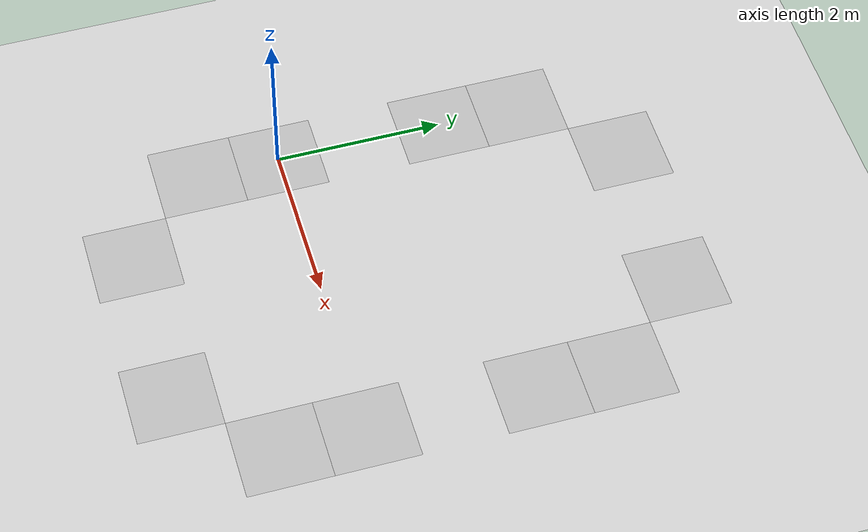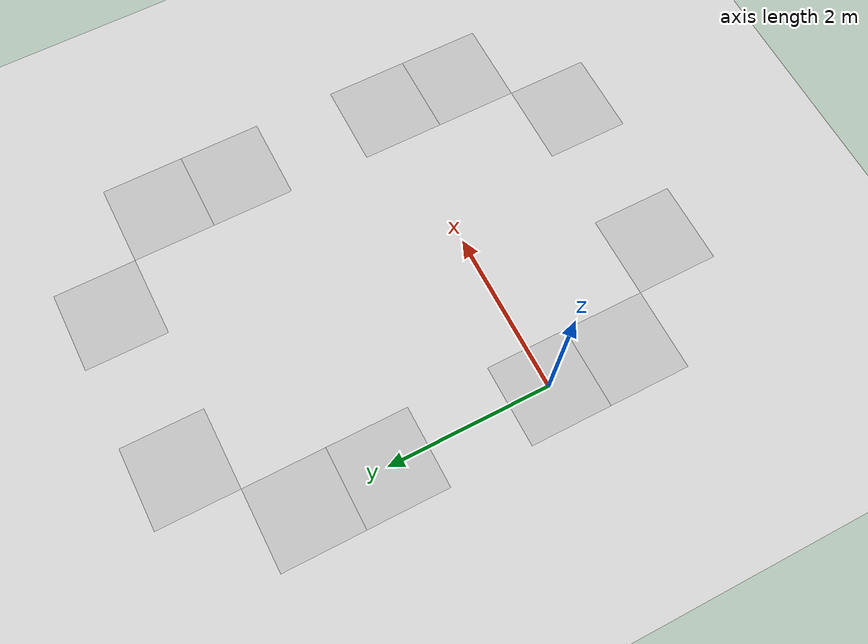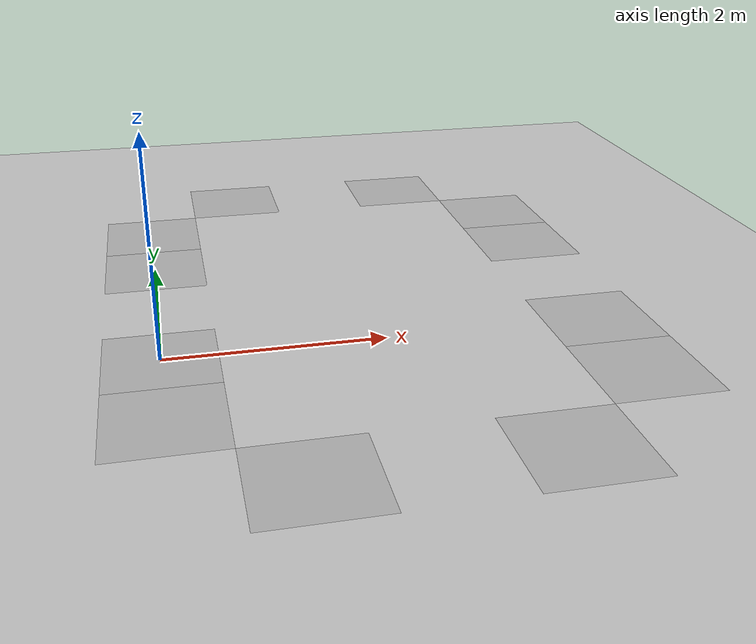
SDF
<sdf version="1.4">
 <world name="default">
  <model name="ground_plane">
   <static>1</static>
   <link name="link">
    <collision name="collision">
     <geometry><plane><normal>0 0 1</normal><size>100 100</size></plane></geometry>
     <surface><friction><ode><mu>100</mu><mu2>50</mu2></ode></friction></surface>
    </collision>
    <visual name="visual">
     <transparency>1</transparency>
     <cast_shadows>0</cast_shadows>
     <geometry><plane><normal>0 0 1</normal><size>100 100</size></plane></geometry>
     <material><script><uri>file://media/materials/scripts/gazebo.material</uri></script></material>
    </visual>
   </link>
  </model>
  <include><uri>model://sun</uri></include>
  <model name="road1">
   <static>true</static>
   <link name="body">
    <visual name="visual">
     <geometry>
      <mesh>
       <uri>file:///home/sou/catkin_ws/src/turtlebot3_simulations/turtlebot3_gazebo/models/road_meshes/road4.dae</uri>
       <scale>0.5 0.5 0.5</scale>
      </mesh>
     </geometry>
    </visual>
   </link>
  </model>
  <model name="road3">
   <pose>0 2 0  0 0 0</pose>
   <static>true</static>
   <link name="body">
    <visual name="visual">
     <geometry>
      <mesh>
       <uri>file:///home/sou/catkin_ws/src/turtlebot3_simulations/turtlebot3_gazebo/models/road_meshes/road4.dae</uri>
       <scale>0.5 0.5 0.5</scale>
      </mesh>
     </geometry>
    </visual>
   </link>
  </model>
  <model name="road4">
   <pose>0 3 0  0 0 0</pose>
   <static>true</static>
   <link name="body">
    <visual name="visual">
     <geometry>
      <mesh>
       <uri>file:///home/sou/catkin_ws/src/turtlebot3_simulations/turtlebot3_gazebo/models/road_meshes/road4.dae</uri>
       <scale>0.5 0.5 0.5</scale>
      </mesh>
     </geometry>
    </visual>
   </link>
  </model>
  <model name="road6">
   <pose>1 4 0  0 0 1.57079</pose>
   <static>true</static>
   <link name="body">
    <visual name="visual">
     <geometry>
      <mesh>
       <uri>file:///home/sou/catkin_ws/src/turtlebot3_simulations/turtlebot3_gazebo/models/road_meshes/road4.dae</uri>
       <scale>0.5 0.5 0.5</scale>
      </mesh>
     </geometry>
    </visual>
   </link>
  </model>
  <model name="road8">
   <pose>3 4 0  0 0 1.57079</pose>
   <static>true</static>
   <link name="body">
    <visual name="visual">
     <geometry>
      <mesh>
       <uri>file:///home/sou/catkin_ws/src/turtlebot3_simulations/turtlebot3_gazebo/models/road_meshes/road4.dae</uri>
       <scale>0.5 0.5 0.5</scale>
      </mesh>
     </geometry>
    </visual>
   </link>
  </model>
  <model name="road10">
   <pose>4 3 0  0 0 0</pose>
   <static>true</static>
   <link name="body">
    <visual name="visual">
     <geometry>
      <mesh>
       <uri>file:///home/sou/catkin_ws/src/turtlebot3_simulations/turtlebot3_gazebo/models/road_meshes/road4.dae</uri>
       <scale>0.5 0.5 0.5</scale>
      </mesh>
     </geometry>
    </visual>
   </link>
  </model>
  <model name="road11">
   <pose>4 2 0  0 0 0</pose>
   <static>true</static>
   <link name="body">
    <visual name="visual">
     <geometry>
      <mesh>
       <uri>file:///home/sou/catkin_ws/src/turtlebot3_simulations/turtlebot3_gazebo/models/road_meshes/road4.dae</uri>
       <scale>0.5 0.5 0.5</scale>
      </mesh>
     </geometry>
    </visual>
   </link>
  </model>
  <model name="road13">
   <pose>4 0 0  0 0 0</pose>
   <static>true</static>
   <link name="body">
    <visual name="visual">
     <geometry>
      <mesh>
       <uri>file:///home/sou/catkin_ws/src/turtlebot3_simulations/turtlebot3_gazebo/models/road_meshes/road4.dae</uri>
       <scale>0.5 0.5 0.5</scale>
      </mesh>
     </geometry>
    </visual>
   </link>
  </model>
  <model name="road14">
   <pose>4 -1 0  0 0 0</pose>
   <static>true</static>
   <link name="body">
    <visual name="visual">
     <geometry>
      <mesh>
       <uri>file:///home/sou/catkin_ws/src/turtlebot3_simulations/turtlebot3_gazebo/models/road_meshes/road4.dae</uri>
       <scale>0.5 0.5 0.5</scale>
      </mesh>
     </geometry>
    </visual>
   </link>
  </model>
  <model name="road16">
   <pose>3 -2 0  0 0 -1.57079</pose>
   <static>true</static>
   <link name="body">
    <visual name="visual">
     <geometry>
      <mesh>
       <uri>file:///home/sou/catkin_ws/src/turtlebot3_simulations/turtlebot3_gazebo/models/road_meshes/road4.dae</uri>
       <scale>0.5 0.5 0.5</scale>
      </mesh>
     </geometry>
    </visual>
   </link>
  </model>
  <model name="road18">
   <pose>1 -2 0  0 0 -1.57079</pose>
   <static>true</static>
   <link name="body">
    <visual name="visual">
     <geometry>
      <mesh>
       <uri>file:///home/sou/catkin_ws/src/turtlebot3_simulations/turtlebot3_gazebo/models/road_meshes/road4.dae</uri>
       <scale>0.5 0.5 0.5</scale>
      </mesh>
     </geometry>
    </visual>
   </link>
  </model>
  <model name="road20">
   <pose>0 -1 0  0 0 -3.14159</pose>
   <static>true</static>
   <link name="body">
    <visual name="visual">
     <geometry>
      <mesh>
       <uri>file:///home/sou/catkin_ws/src/turtlebot3_simulations/turtlebot3_gazebo/models/road_meshes/road4.dae</uri>
       <scale>0.5 0.5 0.5</scale>
      </mesh>
     </geometry>
    </visual>
   </link>
  </model>
  <light name="user_directional_light_0" type="directional">
   <pose>1.50806 1.18329 3 0 -0 0</pose>
   <diffuse>0.5 0.5 0.5 1</diffuse>
   <specular>0.1 0.1 0.1 1</specular>
   <direction>0.1 0.1 -0.9</direction>
   <attenuation>
    <range>20</range>
    <constant>0.5</constant>
    <linear>0.01</linear>
    <quadratic>0.001</quadratic>
   </attenuation>
  </light>
  <scene>
   <ambient>0.4 0.4 0.4 1</ambient>
   <background>0.7 0.7 0.7 1</background>
   <shadows>1</shadows>
   <grid>false</grid>
   <origin_visual>false</origin_visual>
  </scene>
  <light name="user_directional_light_1" type="directional">
   <pose>1.50806 1.18329 3 0 -0 0</pose>
   <diffuse>0.5 0.7 0.5 1</diffuse>
   <specular>0.1 0.1 0.1 1</specular>
   <direction>0.1 0.1 -0.9</direction>
   <attenuation>
    <range>20</range>
    <constant>0.5</constant>
    <linear>0.01</linear>
    <quadratic>0.001</quadratic>
   </attenuation>
  </light>
  <scene>
   <ambient>0.4 0.4 0.4 1</ambient>
   <background>0.7 0.7 0.7 1</background>
   <shadows>1</shadows>
   <grid>false</grid>
   <origin_visual>false</origin_visual>
  </scene>
 </world>
</sdf>
